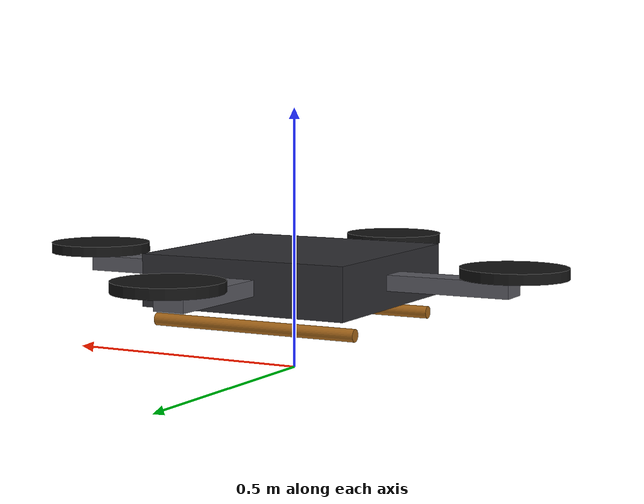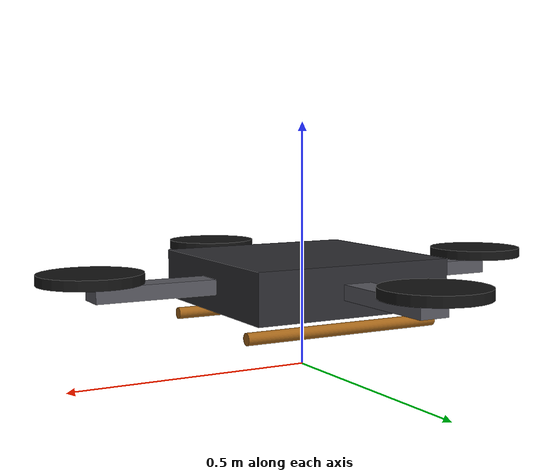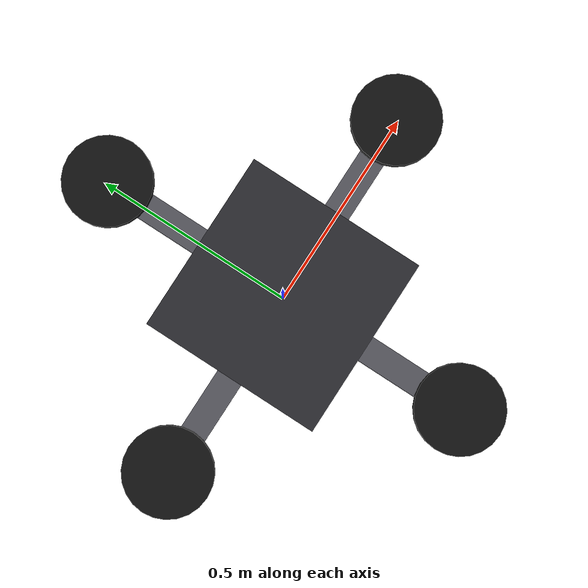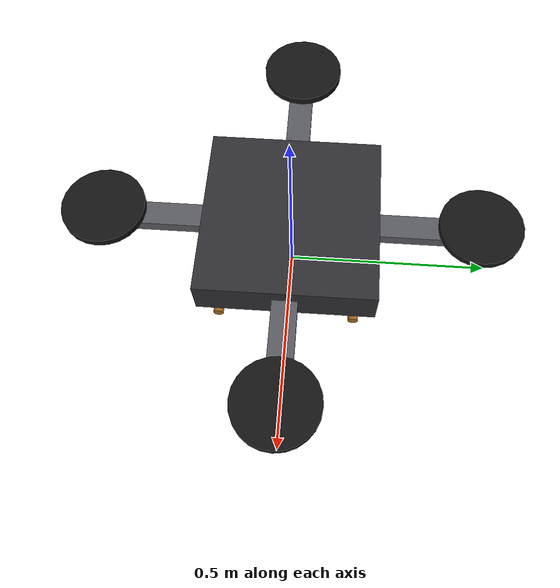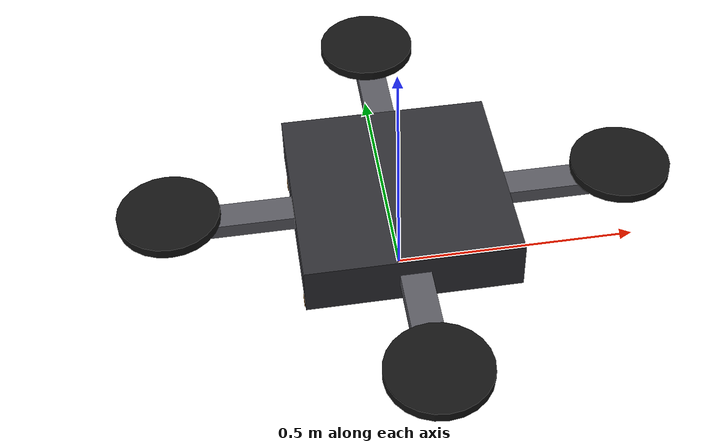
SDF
<?xml version="1.0"?>
<sdf version="1.6">
  <model name="drone">
    <static>false</static>
    <link name="body">
      <pose>0 0 0.18 0 0 0</pose>
      <inertial>
        <mass>6.0</mass>
        <inertia>
          <ixx>0.22</ixx>
          <iyy>0.22</iyy>
          <izz>0.35</izz>
        </inertia>
      </inertial>
      <collision name="collision">
        <pose>0 0 0 0 0 0</pose>
        <geometry>
          <box>
            <size>0.42 0.42 0.12</size>
          </box>
        </geometry>
      </collision>
      <visual name="body_visual">
        <geometry>
          <box>
            <size>0.42 0.42 0.10</size>
          </box>
        </geometry>
        <material>
          <ambient>0.18 0.18 0.20 1.0</ambient>
          <diffuse>0.18 0.18 0.20 1.0</diffuse>
        </material>
      </visual>
      <visual name="arm_x">
        <geometry>
          <box>
            <size>0.90 0.06 0.03</size>
          </box>
        </geometry>
        <material>
          <ambient>0.35 0.35 0.38 1.0</ambient>
          <diffuse>0.35 0.35 0.38 1.0</diffuse>
        </material>
      </visual>
      <visual name="arm_y">
        <geometry>
          <box>
            <size>0.06 0.90 0.03</size>
          </box>
        </geometry>
        <material>
          <ambient>0.35 0.35 0.38 1.0</ambient>
          <diffuse>0.35 0.35 0.38 1.0</diffuse>
        </material>
      </visual>
      <visual name="rotor_front">
        <pose>0.45 0 0.03 0 0 0</pose>
        <geometry>
          <cylinder>
            <radius>0.10</radius>
            <length>0.02</length>
          </cylinder>
        </geometry>
        <material>
          <ambient>0.08 0.08 0.08 1.0</ambient>
          <diffuse>0.08 0.08 0.08 1.0</diffuse>
        </material>
      </visual>
      <visual name="rotor_back">
        <pose>-0.45 0 0.03 0 0 0</pose>
        <geometry>
          <cylinder>
            <radius>0.10</radius>
            <length>0.02</length>
          </cylinder>
        </geometry>
        <material>
          <ambient>0.08 0.08 0.08 1.0</ambient>
          <diffuse>0.08 0.08 0.08 1.0</diffuse>
        </material>
      </visual>
      <visual name="rotor_left">
        <pose>0 0.45 0.03 0 0 0</pose>
        <geometry>
          <cylinder>
            <radius>0.10</radius>
            <length>0.02</length>
          </cylinder>
        </geometry>
        <material>
          <ambient>0.08 0.08 0.08 1.0</ambient>
          <diffuse>0.08 0.08 0.08 1.0</diffuse>
        </material>
      </visual>
      <visual name="rotor_right">
        <pose>0 -0.45 0.03 0 0 0</pose>
        <geometry>
          <cylinder>
            <radius>0.10</radius>
            <length>0.02</length>
          </cylinder>
        </geometry>
        <material>
          <ambient>0.08 0.08 0.08 1.0</ambient>
          <diffuse>0.08 0.08 0.08 1.0</diffuse>
        </material>
      </visual>
      <visual name="skid_left">
        <pose>0 0.16 -0.08 0 1.5708 0</pose>
        <geometry>
          <cylinder>
            <radius>0.012</radius>
            <length>0.42</length>
          </cylinder>
        </geometry>
        <material>
          <ambient>0.65 0.40 0.10 1.0</ambient>
          <diffuse>0.65 0.40 0.10 1.0</diffuse>
        </material>
      </visual>
      <visual name="skid_right">
        <pose>0 -0.16 -0.08 0 1.5708 0</pose>
        <geometry>
          <cylinder>
            <radius>0.012</radius>
            <length>0.42</length>
          </cylinder>
        </geometry>
        <material>
          <ambient>0.65 0.40 0.10 1.0</ambient>
          <diffuse>0.65 0.40 0.10 1.0</diffuse>
        </material>
      </visual>
    </link>
  </model>
</sdf>
